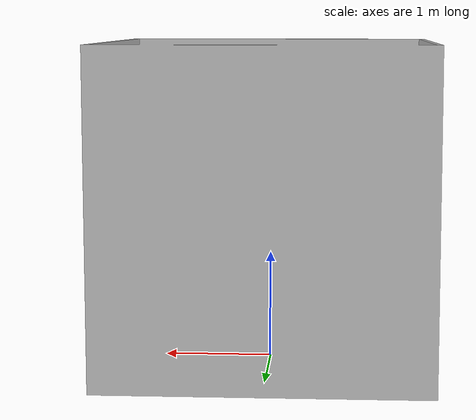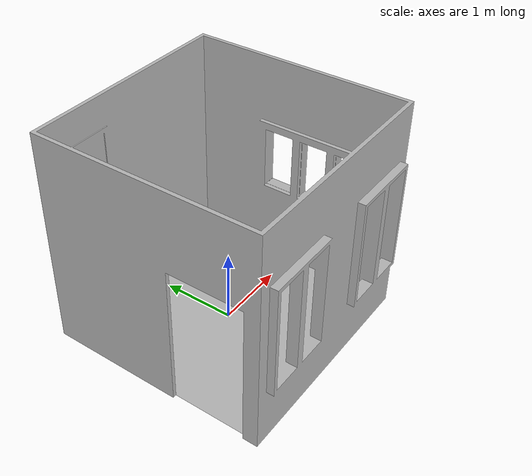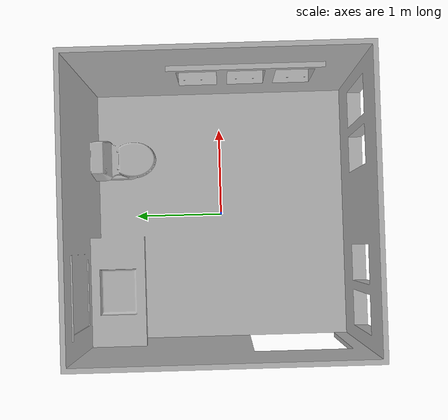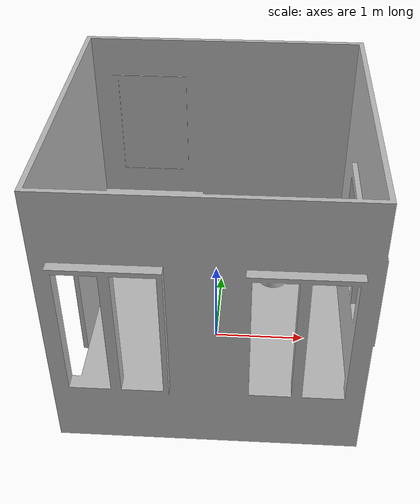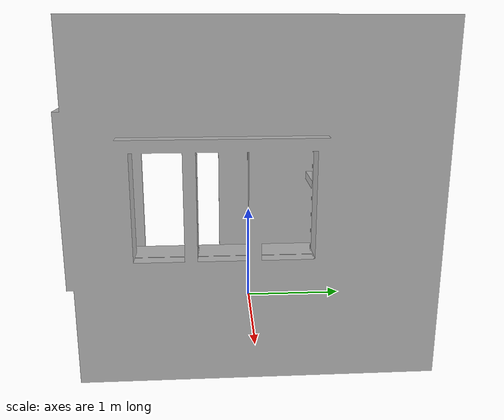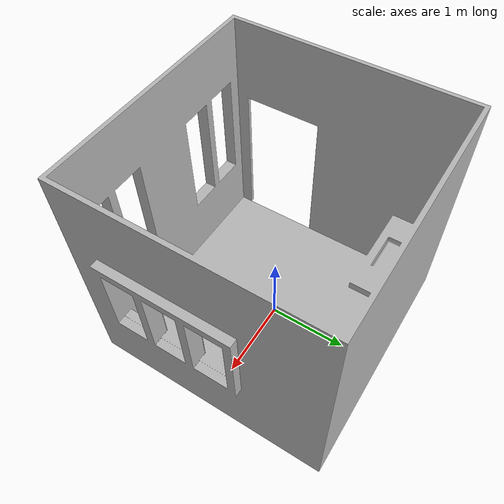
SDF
<sdf version='1.6'>
  <model name='bathroom_config_2'>
  <static>true</static>
    <link name='link'>
      <collision name="collision">
        <geometry>
          <mesh>
            <scale>1 1 1</scale>
            <uri>model://bathroom_config_2/meshes/bathroom_config_2.dae</uri>
          </mesh>
        </geometry>
      </collision>
      <visual name='visual'>
        <geometry>
          <mesh>
            <scale>1 1 1</scale>
            <uri>model://bathroom_config_2/meshes/bathroom_config_2.dae</uri>
          </mesh>
        </geometry>
      </visual>
    </link>
  </model>
</sdf>
